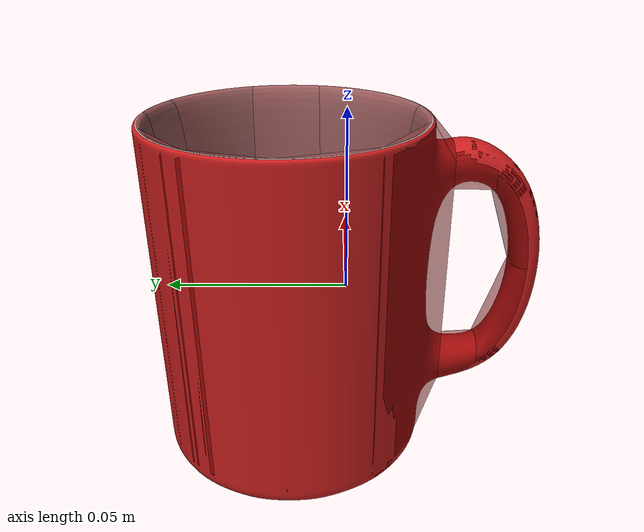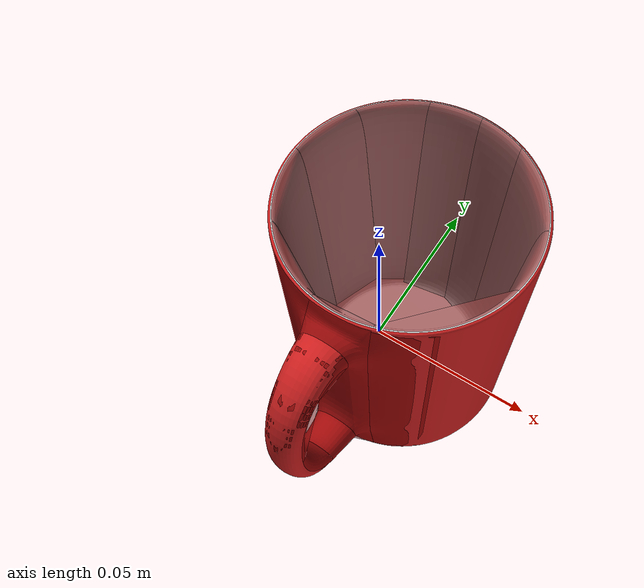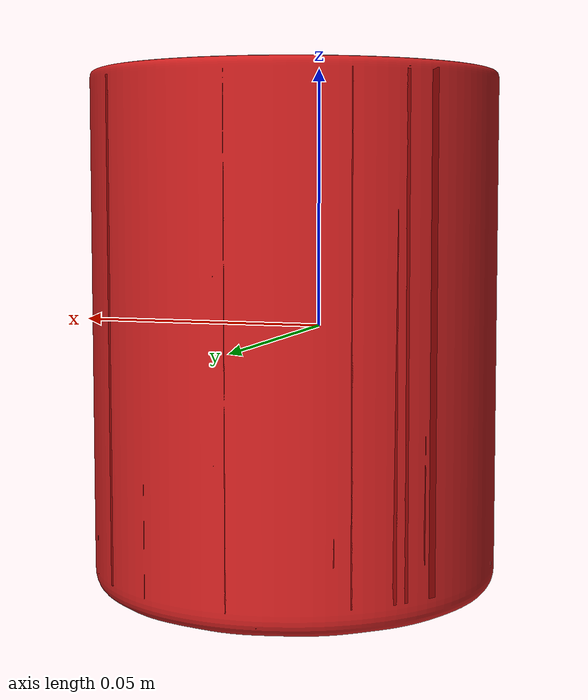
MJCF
<mujoco model="mug_75">
  <asset>
    <mesh file="visual/model_normalized_0.obj" name="model_normalized_0_vis" scale="0.105 0.105 0.105" refquat="1.0 0.0 0.0 0.0"/>
    <mesh file="visual/model_normalized_1.obj" name="model_normalized_1_vis" scale="0.105 0.105 0.105" refquat="1.0 0.0 0.0 0.0"/>
    <material name="Mat.002" specular="0.5" shininess="0.00226274" rgba="0.800000 0.120000 0.120000 1.0"/>
    <material name="material.078" specular="0.5" shininess="0.00226274" rgba="0.800000 0.800000 0.800000 1.0"/>
    <mesh file="collision/collision_mesh_collision_0.obj" name="mug_collision_mesh_0" scale="0.105 0.105 0.105" refquat="1.0 0.0 0.0 0.0"/>
    <mesh file="collision/collision_mesh_collision_1.obj" name="mug_collision_mesh_1" scale="0.105 0.105 0.105" refquat="1.0 0.0 0.0 0.0"/>
    <mesh file="collision/collision_mesh_collision_2.obj" name="mug_collision_mesh_2" scale="0.105 0.105 0.105" refquat="1.0 0.0 0.0 0.0"/>
    <mesh file="collision/collision_mesh_collision_3.obj" name="mug_collision_mesh_3" scale="0.105 0.105 0.105" refquat="1.0 0.0 0.0 0.0"/>
    <mesh file="collision/collision_mesh_collision_4.obj" name="mug_collision_mesh_4" scale="0.105 0.105 0.105" refquat="1.0 0.0 0.0 0.0"/>
    <mesh file="collision/collision_mesh_collision_5.obj" name="mug_collision_mesh_5" scale="0.105 0.105 0.105" refquat="1.0 0.0 0.0 0.0"/>
    <mesh file="collision/collision_mesh_collision_6.obj" name="mug_collision_mesh_6" scale="0.105 0.105 0.105" refquat="1.0 0.0 0.0 0.0"/>
    <mesh file="collision/collision_mesh_collision_7.obj" name="mug_collision_mesh_7" scale="0.105 0.105 0.105" refquat="1.0 0.0 0.0 0.0"/>
    <mesh file="collision/collision_mesh_collision_8.obj" name="mug_collision_mesh_8" scale="0.105 0.105 0.105" refquat="1.0 0.0 0.0 0.0"/>
    <mesh file="collision/collision_mesh_collision_9.obj" name="mug_collision_mesh_9" scale="0.105 0.105 0.105" refquat="1.0 0.0 0.0 0.0"/>
    <mesh file="collision/collision_mesh_collision_10.obj" name="mug_collision_mesh_10" scale="0.105 0.105 0.105" refquat="1.0 0.0 0.0 0.0"/>
    <mesh file="collision/collision_mesh_collision_11.obj" name="mug_collision_mesh_11" scale="0.105 0.105 0.105" refquat="1.0 0.0 0.0 0.0"/>
    <mesh file="collision/collision_mesh_collision_12.obj" name="mug_collision_mesh_12" scale="0.105 0.105 0.105" refquat="1.0 0.0 0.0 0.0"/>
    <mesh file="collision/collision_mesh_collision_13.obj" name="mug_collision_mesh_13" scale="0.105 0.105 0.105" refquat="1.0 0.0 0.0 0.0"/>
    <mesh file="collision/collision_mesh_collision_14.obj" name="mug_collision_mesh_14" scale="0.105 0.105 0.105" refquat="1.0 0.0 0.0 0.0"/>
    <mesh file="collision/collision_mesh_collision_15.obj" name="mug_collision_mesh_15" scale="0.105 0.105 0.105" refquat="1.0 0.0 0.0 0.0"/>
  </asset>
  <default>
    <default class="region">
      <geom group="1" conaffinity="0" contype="0" rgba="0 1 0 0"/>
    </default>
    <default class="collision">
      <geom group="0" rgba="0.5 0 0 0.5" density="1000.0"/>
    </default>
  </default>
  <worldbody>
    <body>
      <body name="object">
        <geom solimp="0.998 0.998 0.001" solref="0.001 1" density="100" friction="0.95 0.3 0.1" type="mesh" mesh="model_normalized_0_vis" conaffinity="0" contype="0" group="1" material="material.078"/>
        <geom solimp="0.998 0.998 0.001" solref="0.001 1" density="100" friction="0.95 0.3 0.1" type="mesh" mesh="model_normalized_1_vis" conaffinity="0" contype="0" group="1" material="Mat.002"/>
        <geom class="region" name="reg_bbox" type="box" pos="3.1500000012563146e-09 0.0 4.6619999999941706e-07" size="0.0371974533 0.0525 0.047977873649999996"/>
        <geom mesh="mug_collision_mesh_0" type="mesh" class="collision"/>
        <geom mesh="mug_collision_mesh_1" type="mesh" class="collision"/>
        <geom mesh="mug_collision_mesh_2" type="mesh" class="collision"/>
        <geom mesh="mug_collision_mesh_3" type="mesh" class="collision"/>
        <geom mesh="mug_collision_mesh_4" type="mesh" class="collision"/>
        <geom mesh="mug_collision_mesh_5" type="mesh" class="collision"/>
        <geom mesh="mug_collision_mesh_6" type="mesh" class="collision"/>
        <geom mesh="mug_collision_mesh_7" type="mesh" class="collision"/>
        <geom mesh="mug_collision_mesh_8" type="mesh" class="collision"/>
        <geom mesh="mug_collision_mesh_9" type="mesh" class="collision"/>
        <geom mesh="mug_collision_mesh_10" type="mesh" class="collision"/>
        <geom mesh="mug_collision_mesh_11" type="mesh" class="collision"/>
        <geom mesh="mug_collision_mesh_12" type="mesh" class="collision"/>
        <geom mesh="mug_collision_mesh_13" type="mesh" class="collision"/>
        <geom mesh="mug_collision_mesh_14" type="mesh" class="collision"/>
        <geom mesh="mug_collision_mesh_15" type="mesh" class="collision"/>
        <geom rgba="0 0 0 0" size="0.036 0.036" pos="0 0.016 0.002" type="cylinder" name="liquid" class="region"/>
        <geom rgba="0 0 0 0 " size="0.028 0.044" pos="0 0.016 0.002" type="cylinder" name="reg_int" class="region"/>
      </body>
    </body>
  </worldbody>
</mujoco>
